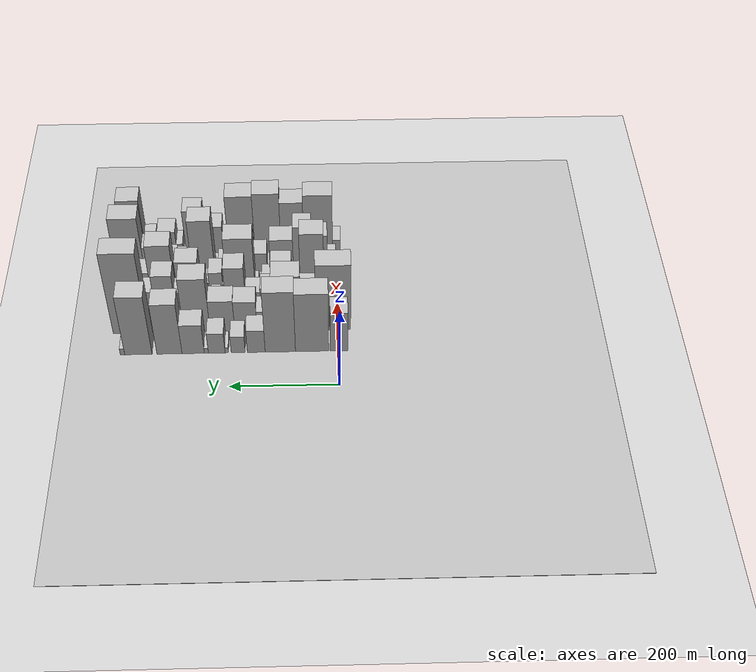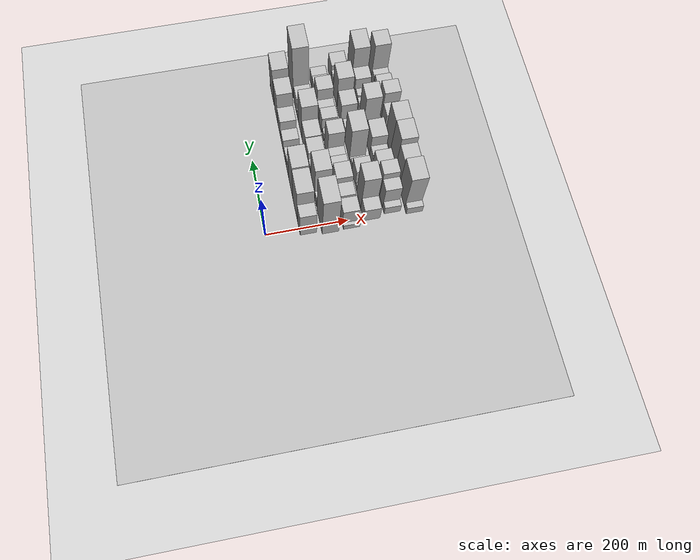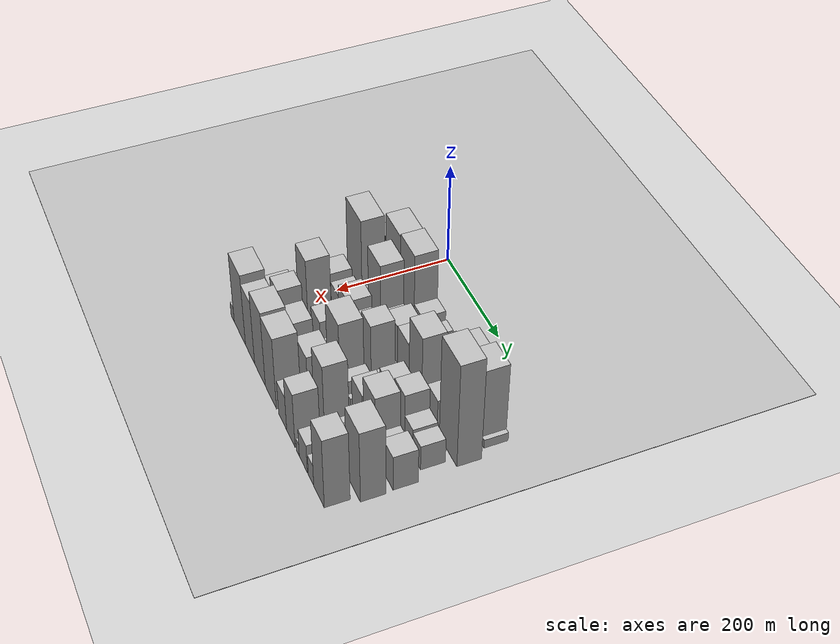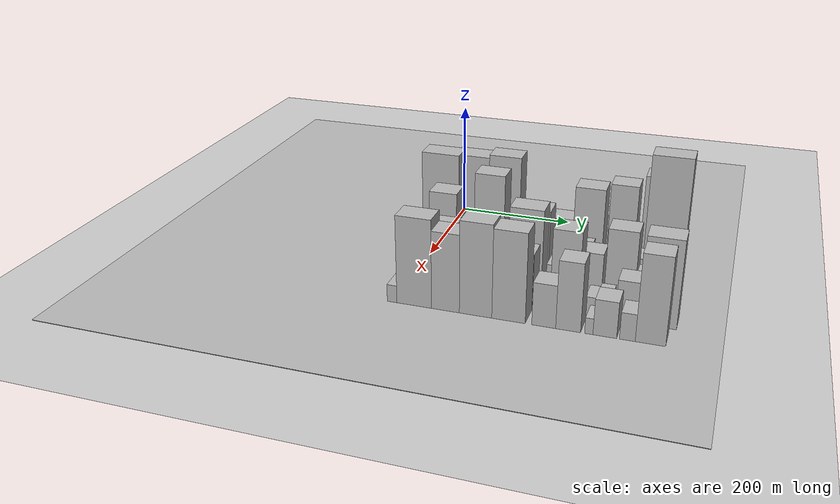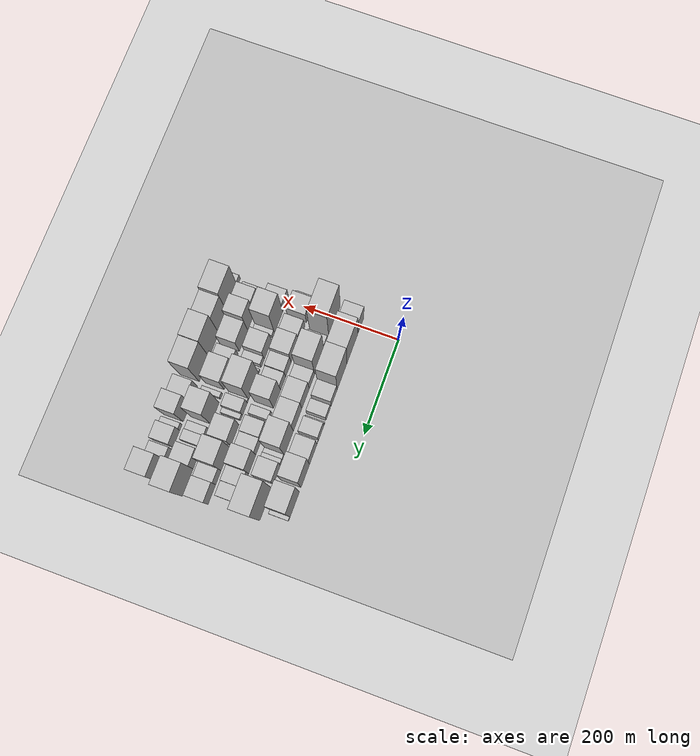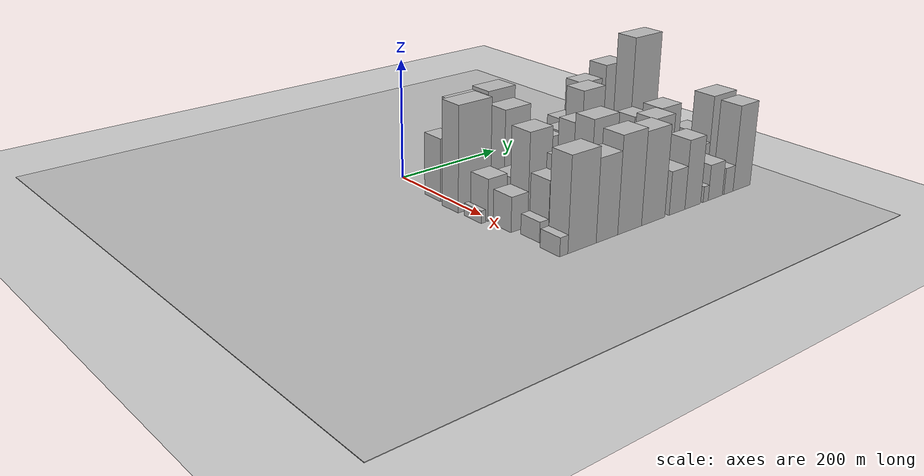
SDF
<sdf version="1.6">
 <world name="default">
  <include><name>ground_plane_1</name><uri>model://HANNAS_ground_plane</uri></include>
  <include>
   <name>ground_plane_2</name>
   <uri>model://HANNAS_ground_plane</uri>
   <pose>100 0 0  0 0 0</pose>
  </include>
  <model name="building_27">
   <static>1</static>
   <pose>100.0000 -0.3385 0 0.000000 0.000000 0.000000</pose>
   <link name="link">
    <pose>0 0 52.50 0 0 0</pose>
    <collision name="collision"><geometry><box><size>40.0000 32.3721 105.0000</size></box></geometry></collision>
    <visual name="visual">
     <cast_shadows>0</cast_shadows>
     <geometry><box><size>40.0000 32.3721 105.0000</size></box></geometry>
     <material>
      <script>
       <uri>model://HANNAS_wall/materials/scripts</uri>
       <uri>model://HANNAS_wall/materials/textures</uri>
       <name>vrc/HANNAS_wall</name>
      </script>
     </material>
    </visual>
   </link>
  </model>
  <model name="building_28">
   <static>1</static>
   <pose>100.0000 49.6720 0 0.000000 0.000000 0.000000</pose>
   <link name="link">
    <pose>0 0 78.00 0 0 0</pose>
    <collision name="collision"><geometry><box><size>40.0000 61.6490 156.0000</size></box></geometry></collision>
    <visual name="visual">
     <cast_shadows>0</cast_shadows>
     <geometry><box><size>40.0000 61.6490 156.0000</size></box></geometry>
     <material>
      <script>
       <uri>model://HANNAS_wall/materials/scripts</uri>
       <uri>model://HANNAS_wall/materials/textures</uri>
       <name>vrc/HANNAS_wall</name>
      </script>
     </material>
    </visual>
   </link>
  </model>
  <model name="building_29">
   <static>1</static>
   <pose>100.0000 108.5790 0 0.000000 0.000000 0.000000</pose>
   <link name="link">
    <pose>0 0 81.00 0 0 0</pose>
    <collision name="collision"><geometry><box><size>40.0000 56.1650 162.0000</size></box></geometry></collision>
    <visual name="visual">
     <cast_shadows>0</cast_shadows>
     <geometry><box><size>40.0000 56.1650 162.0000</size></box></geometry>
     <material>
      <script>
       <uri>model://HANNAS_wall/materials/scripts</uri>
       <uri>model://HANNAS_wall/materials/textures</uri>
       <name>vrc/HANNAS_wall</name>
      </script>
     </material>
    </visual>
   </link>
  </model>
  <model name="building_30">
   <static>1</static>
   <pose>100.0000 153.1803 0 0.000000 0.000000 0.000000</pose>
   <link name="link">
    <pose>0 0 30.00 0 0 0</pose>
    <collision name="collision"><geometry><box><size>40.0000 33.0377 60.0000</size></box></geometry></collision>
    <visual name="visual">
     <cast_shadows>0</cast_shadows>
     <geometry><box><size>40.0000 33.0377 60.0000</size></box></geometry>
     <material>
      <script>
       <uri>model://HANNAS_wall/materials/scripts</uri>
       <uri>model://HANNAS_wall/materials/textures</uri>
       <name>vrc/HANNAS_wall</name>
      </script>
     </material>
    </visual>
   </link>
  </model>
  <model name="building_31">
   <static>1</static>
   <pose>100.0000 186.6412 0 0.000000 0.000000 0.000000</pose>
   <link name="link">
    <pose>0 0 22.50 0 0 0</pose>
    <collision name="collision"><geometry><box><size>40.0000 25.8840 45.0000</size></box></geometry></collision>
    <visual name="visual">
     <cast_shadows>0</cast_shadows>
     <geometry><box><size>40.0000 25.8840 45.0000</size></box></geometry>
     <material>
      <script>
       <uri>model://HANNAS_wall/materials/scripts</uri>
       <uri>model://HANNAS_wall/materials/textures</uri>
       <name>vrc/HANNAS_wall</name>
      </script>
     </material>
    </visual>
   </link>
  </model>
  <model name="building_32">
   <static>1</static>
   <pose>100.0000 207.7206 0 0.000000 0.000000 0.000000</pose>
   <link name="link">
    <pose>0 0 7.50 0 0 0</pose>
    <collision name="collision"><geometry><box><size>40.0000 6.2748 15.0000</size></box></geometry></collision>
    <visual name="visual">
     <cast_shadows>0</cast_shadows>
     <geometry><box><size>40.0000 6.2748 15.0000</size></box></geometry>
     <material>
      <script>
       <uri>model://HANNAS_wall/materials/scripts</uri>
       <uri>model://HANNAS_wall/materials/textures</uri>
       <name>vrc/HANNAS_wall</name>
      </script>
     </material>
    </visual>
   </link>
  </model>
  <model name="building_33">
   <static>1</static>
   <pose>100.0000 226.3824 0 0.000000 0.000000 0.000000</pose>
   <link name="link">
    <pose>0 0 27.00 0 0 0</pose>
    <collision name="collision"><geometry><box><size>40.0000 31.0487 54.0000</size></box></geometry></collision>
    <visual name="visual">
     <cast_shadows>0</cast_shadows>
     <geometry><box><size>40.0000 31.0487 54.0000</size></box></geometry>
     <material>
      <script>
       <uri>model://HANNAS_wall/materials/scripts</uri>
       <uri>model://HANNAS_wall/materials/textures</uri>
       <name>vrc/HANNAS_wall</name>
      </script>
     </material>
    </visual>
   </link>
  </model>
  <model name="building_34">
   <static>1</static>
   <pose>100.0000 245.6248 0 0.000000 0.000000 0.000000</pose>
   <link name="link">
    <pose>0 0 7.50 0 0 0</pose>
    <collision name="collision"><geometry><box><size>40.0000 7.4362 15.0000</size></box></geometry></collision>
    <visual name="visual">
     <cast_shadows>0</cast_shadows>
     <geometry><box><size>40.0000 7.4362 15.0000</size></box></geometry>
     <material>
      <script>
       <uri>model://HANNAS_wall/materials/scripts</uri>
       <uri>model://HANNAS_wall/materials/textures</uri>
       <name>vrc/HANNAS_wall</name>
      </script>
     </material>
    </visual>
   </link>
  </model>
  <model name="building_35">
   <static>1</static>
   <pose>100.0000 269.9662 0 0.000000 0.000000 0.000000</pose>
   <link name="link">
    <pose>0 0 39.00 0 0 0</pose>
    <collision name="collision"><geometry><box><size>40.0000 41.2466 78.0000</size></box></geometry></collision>
    <visual name="visual">
     <cast_shadows>0</cast_shadows>
     <geometry><box><size>40.0000 41.2466 78.0000</size></box></geometry>
     <material>
      <script>
       <uri>model://HANNAS_wall/materials/scripts</uri>
       <uri>model://HANNAS_wall/materials/textures</uri>
       <name>vrc/HANNAS_wall</name>
      </script>
     </material>
    </visual>
   </link>
  </model>
  <model name="building_36">
   <static>1</static>
   <pose>100.0000 313.8307 0 0.000000 0.000000 0.000000</pose>
   <link name="link">
    <pose>0 0 67.50 0 0 0</pose>
    <collision name="collision"><geometry><box><size>40.0000 46.4823 135.0000</size></box></geometry></collision>
    <visual name="visual">
     <cast_shadows>0</cast_shadows>
     <geometry><box><size>40.0000 46.4823 135.0000</size></box></geometry>
     <material>
      <script>
       <uri>model://HANNAS_wall/materials/scripts</uri>
       <uri>model://HANNAS_wall/materials/textures</uri>
       <name>vrc/HANNAS_wall</name>
      </script>
     </material>
    </visual>
   </link>
  </model>
  <model name="building_37">
   <static>1</static>
   <pose>100.0000 371.2891 0 0.000000 0.000000 0.000000</pose>
   <link name="link">
    <pose>0 0 78.00 0 0 0</pose>
    <collision name="collision"><geometry><box><size>40.0000 50.4343 156.0000</size></box></geometry></collision>
    <visual name="visual">
     <cast_shadows>0</cast_shadows>
     <geometry><box><size>40.0000 50.4343 156.0000</size></box></geometry>
     <material>
      <script>
       <uri>model://HANNAS_wall/materials/scripts</uri>
       <uri>model://HANNAS_wall/materials/textures</uri>
       <name>vrc/HANNAS_wall</name>
      </script>
     </material>
    </visual>
   </link>
  </model>
  <model name="building_38">
   <static>1</static>
   <pose>100.0000 400.6374 0 0.000000 0.000000 0.000000</pose>
   <link name="link">
    <pose>0 0 9.00 0 0 0</pose>
    <collision name="collision"><geometry><box><size>40.0000 8.2623 18.0000</size></box></geometry></collision>
    <visual name="visual">
     <cast_shadows>0</cast_shadows>
     <geometry><box><size>40.0000 8.2623 18.0000</size></box></geometry>
     <material>
      <script>
       <uri>model://HANNAS_wall/materials/scripts</uri>
       <uri>model://HANNAS_wall/materials/textures</uri>
       <name>vrc/HANNAS_wall</name>
      </script>
     </material>
    </visual>
   </link>
  </model>
  <model name="building_76">
   <static>1</static>
   <pose>152.0000 9.4014 0 0.000000 0.000000 0.000000</pose>
   <link name="link">
    <pose>0 0 87.00 0 0 0</pose>
    <collision name="collision"><geometry><box><size>40.0000 65.3171 174.0000</size></box></geometry></collision>
    <visual name="visual">
     <cast_shadows>0</cast_shadows>
     <geometry><box><size>40.0000 65.3171 174.0000</size></box></geometry>
     <material>
      <script>
       <uri>model://HANNAS_wall/materials/scripts</uri>
       <uri>model://HANNAS_wall/materials/textures</uri>
       <name>vrc/HANNAS_wall</name>
      </script>
     </material>
    </visual>
   </link>
  </model>
  <model name="building_77">
   <static>1</static>
   <pose>152.0000 59.0993 0 0.000000 0.000000 0.000000</pose>
   <link name="link">
    <pose>0 0 21.00 0 0 0</pose>
    <collision name="collision"><geometry><box><size>40.0000 22.0787 42.0000</size></box></geometry></collision>
    <visual name="visual">
     <cast_shadows>0</cast_shadows>
     <geometry><box><size>40.0000 22.0787 42.0000</size></box></geometry>
     <material>
      <script>
       <uri>model://HANNAS_wall/materials/scripts</uri>
       <uri>model://HANNAS_wall/materials/textures</uri>
       <name>vrc/HANNAS_wall</name>
      </script>
     </material>
    </visual>
   </link>
  </model>
  <model name="building_78">
   <static>1</static>
   <pose>152.0000 96.3847 0 0.000000 0.000000 0.000000</pose>
   <link name="link">
    <pose>0 0 73.50 0 0 0</pose>
    <collision name="collision"><geometry><box><size>40.0000 52.4920 147.0000</size></box></geometry></collision>
    <visual name="visual">
     <cast_shadows>0</cast_shadows>
     <geometry><box><size>40.0000 52.4920 147.0000</size></box></geometry>
     <material>
      <script>
       <uri>model://HANNAS_wall/materials/scripts</uri>
       <uri>model://HANNAS_wall/materials/textures</uri>
       <name>vrc/HANNAS_wall</name>
      </script>
     </material>
    </visual>
   </link>
  </model>
  <model name="building_79">
   <static>1</static>
   <pose>152.0000 137.4373 0 0.000000 0.000000 0.000000</pose>
   <link name="link">
    <pose>0 0 27.00 0 0 0</pose>
    <collision name="collision"><geometry><box><size>40.0000 29.6134 54.0000</size></box></geometry></collision>
    <visual name="visual">
     <cast_shadows>0</cast_shadows>
     <geometry><box><size>40.0000 29.6134 54.0000</size></box></geometry>
     <material>
      <script>
       <uri>model://HANNAS_wall/materials/scripts</uri>
       <uri>model://HANNAS_wall/materials/textures</uri>
       <name>vrc/HANNAS_wall</name>
      </script>
     </material>
    </visual>
   </link>
  </model>
  <model name="building_80">
   <static>1</static>
   <pose>152.0000 173.2506 0 0.000000 0.000000 0.000000</pose>
   <link name="link">
    <pose>0 0 40.50 0 0 0</pose>
    <collision name="collision"><geometry><box><size>40.0000 42.0132 81.0000</size></box></geometry></collision>
    <visual name="visual">
     <cast_shadows>0</cast_shadows>
     <geometry><box><size>40.0000 42.0132 81.0000</size></box></geometry>
     <material>
      <script>
       <uri>model://HANNAS_wall/materials/scripts</uri>
       <uri>model://HANNAS_wall/materials/textures</uri>
       <name>vrc/HANNAS_wall</name>
      </script>
     </material>
    </visual>
   </link>
  </model>
  <model name="building_81">
   <static>1</static>
   <pose>152.0000 217.4096 0 0.000000 0.000000 0.000000</pose>
   <link name="link">
    <pose>0 0 42.00 0 0 0</pose>
    <collision name="collision"><geometry><box><size>40.0000 46.3047 84.0000</size></box></geometry></collision>
    <visual name="visual">
     <cast_shadows>0</cast_shadows>
     <geometry><box><size>40.0000 46.3047 84.0000</size></box></geometry>
     <material>
      <script>
       <uri>model://HANNAS_wall/materials/scripts</uri>
       <uri>model://HANNAS_wall/materials/textures</uri>
       <name>vrc/HANNAS_wall</name>
      </script>
     </material>
    </visual>
   </link>
  </model>
  <model name="building_82">
   <static>1</static>
   <pose>152.0000 265.3764 0 0.000000 0.000000 0.000000</pose>
   <link name="link">
    <pose>0 0 72.00 0 0 0</pose>
    <collision name="collision"><geometry><box><size>40.0000 49.6288 144.0000</size></box></geometry></collision>
    <visual name="visual">
     <cast_shadows>0</cast_shadows>
     <geometry><box><size>40.0000 49.6288 144.0000</size></box></geometry>
     <material>
      <script>
       <uri>model://HANNAS_wall/materials/scripts</uri>
       <uri>model://HANNAS_wall/materials/textures</uri>
       <name>vrc/HANNAS_wall</name>
      </script>
     </material>
    </visual>
   </link>
  </model>
  <model name="building_83">
   <static>1</static>
   <pose>152.0000 295.2473 0 0.000000 0.000000 0.000000</pose>
   <link name="link">
    <pose>0 0 10.50 0 0 0</pose>
    <collision name="collision"><geometry><box><size>40.0000 10.1131 21.0000</size></box></geometry></collision>
    <visual name="visual">
     <cast_shadows>0</cast_shadows>
     <geometry><box><size>40.0000 10.1131 21.0000</size></box></geometry>
     <material>
      <script>
       <uri>model://HANNAS_wall/materials/scripts</uri>
       <uri>model://HANNAS_wall/materials/textures</uri>
       <name>vrc/HANNAS_wall</name>
      </script>
     </material>
    </visual>
   </link>
  </model>
  <model name="building_84">
   <static>1</static>
   <pose>152.0000 305.7134 0 0.000000 0.000000 0.000000</pose>
   <link name="link">
    <pose>0 0 13.50 0 0 0</pose>
    <collision name="collision"><geometry><box><size>40.0000 10.8191 27.0000</size></box></geometry></collision>
    <visual name="visual">
     <cast_shadows>0</cast_shadows>
     <geometry><box><size>40.0000 10.8191 27.0000</size></box></geometry>
     <material>
      <script>
       <uri>model://HANNAS_wall/materials/scripts</uri>
       <uri>model://HANNAS_wall/materials/textures</uri>
       <name>vrc/HANNAS_wall</name>
      </script>
     </material>
    </visual>
   </link>
  </model>
  <model name="building_85">
   <static>1</static>
   <pose>152.0000 330.2927 0 0.000000 0.000000 0.000000</pose>
   <link name="link">
    <pose>0 0 34.50 0 0 0</pose>
    <collision name="collision"><geometry><box><size>40.0000 38.3396 69.0000</size></box></geometry></collision>
    <visual name="visual">
     <cast_shadows>0</cast_shadows>
     <geometry><box><size>40.0000 38.3396 69.0000</size></box></geometry>
     <material>
      <script>
       <uri>model://HANNAS_wall/materials/scripts</uri>
       <uri>model://HANNAS_wall/materials/textures</uri>
       <name>vrc/HANNAS_wall</name>
      </script>
     </material>
    </visual>
   </link>
  </model>
  <model name="building_86">
   <static>1</static>
   <pose>152.0000 389.9390 0 0.000000 0.000000 0.000000</pose>
   <link name="link">
    <pose>0 0 106.50 0 0 0</pose>
    <collision name="collision"><geometry><box><size>40.0000 64.9530 213.0000</size></box></geometry></collision>
    <visual name="visual">
     <cast_shadows>0</cast_shadows>
     <geometry><box><size>40.0000 64.9530 213.0000</size></box></geometry>
     <material>
      <script>
       <uri>model://HANNAS_wall/materials/scripts</uri>
       <uri>model://HANNAS_wall/materials/textures</uri>
       <name>vrc/HANNAS_wall</name>
      </script>
     </material>
    </visual>
   </link>
  </model>
  <model name="building_122">
   <static>1</static>
   <pose>204.0000 -16.7862 0 0.000000 0.000000 0.000000</pose>
   <link name="link">
    <pose>0 0 10.50 0 0 0</pose>
    <collision name="collision"><geometry><box><size>40.0000 8.7486 21.0000</size></box></geometry></collision>
    <visual name="visual">
     <cast_shadows>0</cast_shadows>
     <geometry><box><size>40.0000 8.7486 21.0000</size></box></geometry>
     <material>
      <script>
       <uri>model://HANNAS_wall/materials/scripts</uri>
       <uri>model://HANNAS_wall/materials/textures</uri>
       <name>vrc/HANNAS_wall</name>
      </script>
     </material>
    </visual>
   </link>
  </model>
  <model name="building_123">
   <static>1</static>
   <pose>204.0000 10.6278 0 0.000000 0.000000 0.000000</pose>
   <link name="link">
    <pose>0 0 34.50 0 0 0</pose>
    <collision name="collision"><geometry><box><size>40.0000 38.0793 69.0000</size></box></geometry></collision>
    <visual name="visual">
     <cast_shadows>0</cast_shadows>
     <geometry><box><size>40.0000 38.0793 69.0000</size></box></geometry>
     <material>
      <script>
       <uri>model://HANNAS_wall/materials/scripts</uri>
       <uri>model://HANNAS_wall/materials/textures</uri>
       <name>vrc/HANNAS_wall</name>
      </script>
     </material>
    </visual>
   </link>
  </model>
  <model name="building_124">
   <static>1</static>
   <pose>204.0000 55.2662 0 0.000000 0.000000 0.000000</pose>
   <link name="link">
    <pose>0 0 30.00 0 0 0</pose>
    <collision name="collision"><geometry><box><size>40.0000 35.1975 60.0000</size></box></geometry></collision>
    <visual name="visual">
     <cast_shadows>0</cast_shadows>
     <geometry><box><size>40.0000 35.1975 60.0000</size></box></geometry>
     <material>
      <script>
       <uri>model://HANNAS_wall/materials/scripts</uri>
       <uri>model://HANNAS_wall/materials/textures</uri>
       <name>vrc/HANNAS_wall</name>
      </script>
     </material>
    </visual>
   </link>
  </model>
  <model name="building_125">
   <static>1</static>
   <pose>204.0000 94.1316 0 0.000000 0.000000 0.000000</pose>
   <link name="link">
    <pose>0 0 42.00 0 0 0</pose>
    <collision name="collision"><geometry><box><size>40.0000 42.5333 84.0000</size></box></geometry></collision>
    <visual name="visual">
     <cast_shadows>0</cast_shadows>
     <geometry><box><size>40.0000 42.5333 84.0000</size></box></geometry>
     <material>
      <script>
       <uri>model://HANNAS_wall/materials/scripts</uri>
       <uri>model://HANNAS_wall/materials/textures</uri>
       <name>vrc/HANNAS_wall</name>
      </script>
     </material>
    </visual>
   </link>
  </model>
  <model name="building_126">
   <static>1</static>
   <pose>204.0000 130.6679 0 0.000000 0.000000 0.000000</pose>
   <link name="link">
    <pose>0 0 30.00 0 0 0</pose>
    <collision name="collision"><geometry><box><size>40.0000 30.5393 60.0000</size></box></geometry></collision>
    <visual name="visual">
     <cast_shadows>0</cast_shadows>
     <geometry><box><size>40.0000 30.5393 60.0000</size></box></geometry>
     <material>
      <script>
       <uri>model://HANNAS_wall/materials/scripts</uri>
       <uri>model://HANNAS_wall/materials/textures</uri>
       <name>vrc/HANNAS_wall</name>
      </script>
     </material>
    </visual>
   </link>
  </model>
  <model name="building_127">
   <static>1</static>
   <pose>204.0000 159.8805 0 0.000000 0.000000 0.000000</pose>
   <link name="link">
    <pose>0 0 25.50 0 0 0</pose>
    <collision name="collision"><geometry><box><size>40.0000 27.8859 51.0000</size></box></geometry></collision>
    <visual name="visual">
     <cast_shadows>0</cast_shadows>
     <geometry><box><size>40.0000 27.8859 51.0000</size></box></geometry>
     <material>
      <script>
       <uri>model://HANNAS_wall/materials/scripts</uri>
       <uri>model://HANNAS_wall/materials/textures</uri>
       <name>vrc/HANNAS_wall</name>
      </script>
     </material>
    </visual>
   </link>
  </model>
  <model name="building_128">
   <static>1</static>
   <pose>204.0000 192.9003 0 0.000000 0.000000 0.000000</pose>
   <link name="link">
    <pose>0 0 58.50 0 0 0</pose>
    <collision name="collision"><geometry><box><size>40.0000 38.1537 117.0000</size></box></geometry></collision>
    <visual name="visual">
     <cast_shadows>0</cast_shadows>
     <geometry><box><size>40.0000 38.1537 117.0000</size></box></geometry>
     <material>
      <script>
       <uri>model://HANNAS_wall/materials/scripts</uri>
       <uri>model://HANNAS_wall/materials/textures</uri>
       <name>vrc/HANNAS_wall</name>
      </script>
     </material>
    </visual>
   </link>
  </model>
  <model name="building_129">
   <static>1</static>
   <pose>204.0000 231.1745 0 0.000000 0.000000 0.000000</pose>
   <link name="link">
    <pose>0 0 16.50 0 0 0</pose>
    <collision name="collision"><geometry><box><size>40.0000 18.3946 33.0000</size></box></geometry></collision>
    <visual name="visual">
     <cast_shadows>0</cast_shadows>
     <geometry><box><size>40.0000 18.3946 33.0000</size></box></geometry>
     <material>
      <script>
       <uri>model://HANNAS_wall/materials/scripts</uri>
       <uri>model://HANNAS_wall/materials/textures</uri>
       <name>vrc/HANNAS_wall</name>
      </script>
     </material>
    </visual>
   </link>
  </model>
  <model name="building_130">
   <static>1</static>
   <pose>204.0000 263.5412 0 0.000000 0.000000 0.000000</pose>
   <link name="link">
    <pose>0 0 31.50 0 0 0</pose>
    <collision name="collision"><geometry><box><size>40.0000 32.3388 63.0000</size></box></geometry></collision>
    <visual name="visual">
     <cast_shadows>0</cast_shadows>
     <geometry><box><size>40.0000 32.3388 63.0000</size></box></geometry>
     <material>
      <script>
       <uri>model://HANNAS_wall/materials/scripts</uri>
       <uri>model://HANNAS_wall/materials/textures</uri>
       <name>vrc/HANNAS_wall</name>
      </script>
     </material>
    </visual>
   </link>
  </model>
  <model name="building_131">
   <static>1</static>
   <pose>204.0000 293.8722 0 0.000000 0.000000 0.000000</pose>
   <link name="link">
    <pose>0 0 27.00 0 0 0</pose>
    <collision name="collision"><geometry><box><size>40.0000 28.3230 54.0000</size></box></geometry></collision>
    <visual name="visual">
     <cast_shadows>0</cast_shadows>
     <geometry><box><size>40.0000 28.3230 54.0000</size></box></geometry>
     <material>
      <script>
       <uri>model://HANNAS_wall/materials/scripts</uri>
       <uri>model://HANNAS_wall/materials/textures</uri>
       <name>vrc/HANNAS_wall</name>
      </script>
     </material>
    </visual>
   </link>
  </model>
  <model name="building_132">
   <static>1</static>
   <pose>204.0000 327.5562 0 0.000000 0.000000 0.000000</pose>
   <link name="link">
    <pose>0 0 49.50 0 0 0</pose>
    <collision name="collision"><geometry><box><size>40.0000 39.0451 99.0000</size></box></geometry></collision>
    <visual name="visual">
     <cast_shadows>0</cast_shadows>
     <geometry><box><size>40.0000 39.0451 99.0000</size></box></geometry>
     <material>
      <script>
       <uri>model://HANNAS_wall/materials/scripts</uri>
       <uri>model://HANNAS_wall/materials/textures</uri>
       <name>vrc/HANNAS_wall</name>
      </script>
     </material>
    </visual>
   </link>
  </model>
  <model name="building_133">
   <static>1</static>
   <pose>204.0000 362.6404 0 0.000000 0.000000 0.000000</pose>
   <link name="link">
    <pose>0 0 28.50 0 0 0</pose>
    <collision name="collision"><geometry><box><size>40.0000 31.1232 57.0000</size></box></geometry></collision>
    <visual name="visual">
     <cast_shadows>0</cast_shadows>
     <geometry><box><size>40.0000 31.1232 57.0000</size></box></geometry>
     <material>
      <script>
       <uri>model://HANNAS_wall/materials/scripts</uri>
       <uri>model://HANNAS_wall/materials/textures</uri>
       <name>vrc/HANNAS_wall</name>
      </script>
     </material>
    </visual>
   </link>
  </model>
  <model name="building_134">
   <static>1</static>
   <pose>204.0000 392.9193 0 0.000000 0.000000 0.000000</pose>
   <link name="link">
    <pose>0 0 25.50 0 0 0</pose>
    <collision name="collision"><geometry><box><size>40.0000 29.4346 51.0000</size></box></geometry></collision>
    <visual name="visual">
     <cast_shadows>0</cast_shadows>
     <geometry><box><size>40.0000 29.4346 51.0000</size></box></geometry>
     <material>
      <script>
       <uri>model://HANNAS_wall/materials/scripts</uri>
       <uri>model://HANNAS_wall/materials/textures</uri>
       <name>vrc/HANNAS_wall</name>
      </script>
     </material>
    </visual>
   </link>
  </model>
  <model name="building_170">
   <static>1</static>
   <pose>256.0000 8.5585 0 0.000000 0.000000 0.000000</pose>
   <link name="link">
    <pose>0 0 28.50 0 0 0</pose>
    <collision name="collision"><geometry><box><size>40.0000 33.3806 57.0000</size></box></geometry></collision>
    <visual name="visual">
     <cast_shadows>0</cast_shadows>
     <geometry><box><size>40.0000 33.3806 57.0000</size></box></geometry>
     <material>
      <script>
       <uri>model://HANNAS_wall/materials/scripts</uri>
       <uri>model://HANNAS_wall/materials/textures</uri>
       <name>vrc/HANNAS_wall</name>
      </script>
     </material>
    </visual>
   </link>
  </model>
  <model name="building_171">
   <static>1</static>
   <pose>256.0000 48.0222 0 0.000000 0.000000 0.000000</pose>
   <link name="link">
    <pose>0 0 75.00 0 0 0</pose>
    <collision name="collision"><geometry><box><size>40.0000 45.5469 150.0000</size></box></geometry></collision>
    <visual name="visual">
     <cast_shadows>0</cast_shadows>
     <geometry><box><size>40.0000 45.5469 150.0000</size></box></geometry>
     <material>
      <script>
       <uri>model://HANNAS_wall/materials/scripts</uri>
       <uri>model://HANNAS_wall/materials/textures</uri>
       <name>vrc/HANNAS_wall</name>
      </script>
     </material>
    </visual>
   </link>
  </model>
  <model name="building_172">
   <static>1</static>
   <pose>256.0000 76.5300 0 0.000000 0.000000 0.000000</pose>
   <link name="link">
    <pose>0 0 13.50 0 0 0</pose>
    <collision name="collision"><geometry><box><size>40.0000 11.4686 27.0000</size></box></geometry></collision>
    <visual name="visual">
     <cast_shadows>0</cast_shadows>
     <geometry><box><size>40.0000 11.4686 27.0000</size></box></geometry>
     <material>
      <script>
       <uri>model://HANNAS_wall/materials/scripts</uri>
       <uri>model://HANNAS_wall/materials/textures</uri>
       <name>vrc/HANNAS_wall</name>
      </script>
     </material>
    </visual>
   </link>
  </model>
  <model name="building_173">
   <static>1</static>
   <pose>256.0000 107.2430 0 0.000000 0.000000 0.000000</pose>
   <link name="link">
    <pose>0 0 34.50 0 0 0</pose>
    <collision name="collision"><geometry><box><size>40.0000 39.9574 69.0000</size></box></geometry></collision>
    <visual name="visual">
     <cast_shadows>0</cast_shadows>
     <geometry><box><size>40.0000 39.9574 69.0000</size></box></geometry>
     <material>
      <script>
       <uri>model://HANNAS_wall/materials/scripts</uri>
       <uri>model://HANNAS_wall/materials/textures</uri>
       <name>vrc/HANNAS_wall</name>
      </script>
     </material>
    </visual>
   </link>
  </model>
  <model name="building_174">
   <static>1</static>
   <pose>256.0000 136.0284 0 0.000000 0.000000 0.000000</pose>
   <link name="link">
    <pose>0 0 16.50 0 0 0</pose>
    <collision name="collision"><geometry><box><size>40.0000 17.6133 33.0000</size></box></geometry></collision>
    <visual name="visual">
     <cast_shadows>0</cast_shadows>
     <geometry><box><size>40.0000 17.6133 33.0000</size></box></geometry>
     <material>
      <script>
       <uri>model://HANNAS_wall/materials/scripts</uri>
       <uri>model://HANNAS_wall/materials/textures</uri>
       <name>vrc/HANNAS_wall</name>
      </script>
     </material>
    </visual>
   </link>
  </model>
  <model name="building_175">
   <static>1</static>
   <pose>256.0000 154.2861 0 0.000000 0.000000 0.000000</pose>
   <link name="link">
    <pose>0 0 7.50 0 0 0</pose>
    <collision name="collision"><geometry><box><size>40.0000 6.9021 15.0000</size></box></geometry></collision>
    <visual name="visual">
     <cast_shadows>0</cast_shadows>
     <geometry><box><size>40.0000 6.9021 15.0000</size></box></geometry>
     <material>
      <script>
       <uri>model://HANNAS_wall/materials/scripts</uri>
       <uri>model://HANNAS_wall/materials/textures</uri>
       <name>vrc/HANNAS_wall</name>
      </script>
     </material>
    </visual>
   </link>
  </model>
  <model name="building_176">
   <static>1</static>
   <pose>256.0000 185.1855 0 0.000000 0.000000 0.000000</pose>
   <link name="link">
    <pose>0 0 70.50 0 0 0</pose>
    <collision name="collision"><geometry><box><size>40.0000 54.8968 141.0000</size></box></geometry></collision>
    <visual name="visual">
     <cast_shadows>0</cast_shadows>
     <geometry><box><size>40.0000 54.8968 141.0000</size></box></geometry>
     <material>
      <script>
       <uri>model://HANNAS_wall/materials/scripts</uri>
       <uri>model://HANNAS_wall/materials/textures</uri>
       <name>vrc/HANNAS_wall</name>
      </script>
     </material>
    </visual>
   </link>
  </model>
  <model name="building_177">
   <static>1</static>
   <pose>256.0000 216.2706 0 0.000000 0.000000 0.000000</pose>
   <link name="link">
    <pose>0 0 9.00 0 0 0</pose>
    <collision name="collision"><geometry><box><size>40.0000 7.2733 18.0000</size></box></geometry></collision>
    <visual name="visual">
     <cast_shadows>0</cast_shadows>
     <geometry><box><size>40.0000 7.2733 18.0000</size></box></geometry>
     <material>
      <script>
       <uri>model://HANNAS_wall/materials/scripts</uri>
       <uri>model://HANNAS_wall/materials/textures</uri>
       <name>vrc/HANNAS_wall</name>
      </script>
     </material>
    </visual>
   </link>
  </model>
  <model name="building_178">
   <static>1</static>
   <pose>256.0000 232.9985 0 0.000000 0.000000 0.000000</pose>
   <link name="link">
    <pose>0 0 25.50 0 0 0</pose>
    <collision name="collision"><geometry><box><size>40.0000 26.1825 51.0000</size></box></geometry></collision>
    <visual name="visual">
     <cast_shadows>0</cast_shadows>
     <geometry><box><size>40.0000 26.1825 51.0000</size></box></geometry>
     <material>
      <script>
       <uri>model://HANNAS_wall/materials/scripts</uri>
       <uri>model://HANNAS_wall/materials/textures</uri>
       <name>vrc/HANNAS_wall</name>
      </script>
     </material>
    </visual>
   </link>
  </model>
  <model name="building_179">
   <static>1</static>
   <pose>256.0000 251.4834 0 0.000000 0.000000 0.000000</pose>
   <link name="link">
    <pose>0 0 12.00 0 0 0</pose>
    <collision name="collision"><geometry><box><size>40.0000 10.7873 24.0000</size></box></geometry></collision>
    <visual name="visual">
     <cast_shadows>0</cast_shadows>
     <geometry><box><size>40.0000 10.7873 24.0000</size></box></geometry>
     <material>
      <script>
       <uri>model://HANNAS_wall/materials/scripts</uri>
       <uri>model://HANNAS_wall/materials/textures</uri>
       <name>vrc/HANNAS_wall</name>
      </script>
     </material>
    </visual>
   </link>
  </model>
  <model name="building_180">
   <static>1</static>
   <pose>256.0000 286.6465 0 0.000000 0.000000 0.000000</pose>
   <link name="link">
    <pose>0 0 40.50 0 0 0</pose>
    <collision name="collision"><geometry><box><size>40.0000 43.5388 81.0000</size></box></geometry></collision>
    <visual name="visual">
     <cast_shadows>0</cast_shadows>
     <geometry><box><size>40.0000 43.5388 81.0000</size></box></geometry>
     <material>
      <script>
       <uri>model://HANNAS_wall/materials/scripts</uri>
       <uri>model://HANNAS_wall/materials/textures</uri>
       <name>vrc/HANNAS_wall</name>
      </script>
     </material>
    </visual>
   </link>
  </model>
  <model name="building_181">
   <static>1</static>
   <pose>256.0000 336.0050 0 0.000000 0.000000 0.000000</pose>
   <link name="link">
    <pose>0 0 63.00 0 0 0</pose>
    <collision name="collision"><geometry><box><size>40.0000 47.1782 126.0000</size></box></geometry></collision>
    <visual name="visual">
     <cast_shadows>0</cast_shadows>
     <geometry><box><size>40.0000 47.1782 126.0000</size></box></geometry>
     <material>
      <script>
       <uri>model://HANNAS_wall/materials/scripts</uri>
       <uri>model://HANNAS_wall/materials/textures</uri>
       <name>vrc/HANNAS_wall</name>
      </script>
     </material>
    </visual>
   </link>
  </model>
  <model name="building_182">
   <static>1</static>
   <pose>256.0000 373.8545 0 0.000000 0.000000 0.000000</pose>
   <link name="link">
    <pose>0 0 27.00 0 0 0</pose>
    <collision name="collision"><geometry><box><size>40.0000 28.5209 54.0000</size></box></geometry></collision>
    <visual name="visual">
     <cast_shadows>0</cast_shadows>
     <geometry><box><size>40.0000 28.5209 54.0000</size></box></geometry>
     <material>
      <script>
       <uri>model://HANNAS_wall/materials/scripts</uri>
       <uri>model://HANNAS_wall/materials/textures</uri>
       <name>vrc/HANNAS_wall</name>
      </script>
     </material>
    </visual>
   </link>
  </model>
  <model name="building_183">
   <static>1</static>
   <pose>256.0000 407.9335 0 0.000000 0.000000 0.000000</pose>
   <link name="link">
    <pose>0 0 36.00 0 0 0</pose>
    <collision name="collision"><geometry><box><size>40.0000 39.6370 72.0000</size></box></geometry></collision>
    <visual name="visual">
     <cast_shadows>0</cast_shadows>
     <geometry><box><size>40.0000 39.6370 72.0000</size></box></geometry>
     <material>
      <script>
       <uri>model://HANNAS_wall/materials/scripts</uri>
       <uri>model://HANNAS_wall/materials/textures</uri>
       <name>vrc/HANNAS_wall</name>
      </script>
     </material>
    </visual>
   </link>
  </model>
  <model name="building_219">
   <static>1</static>
   <pose>308.0000 8.8605 0 0.000000 0.000000 0.000000</pose>
   <link name="link">
    <pose>0 0 16.50 0 0 0</pose>
    <collision name="collision"><geometry><box><size>40.0000 17.1379 33.0000</size></box></geometry></collision>
    <visual name="visual">
     <cast_shadows>0</cast_shadows>
     <geometry><box><size>40.0000 17.1379 33.0000</size></box></geometry>
     <material>
      <script>
       <uri>model://HANNAS_wall/materials/scripts</uri>
       <uri>model://HANNAS_wall/materials/textures</uri>
       <name>vrc/HANNAS_wall</name>
      </script>
     </material>
    </visual>
   </link>
  </model>
  <model name="building_220">
   <static>1</static>
   <pose>308.0000 32.8463 0 0.000000 0.000000 0.000000</pose>
   <link name="link">
    <pose>0 0 46.50 0 0 0</pose>
    <collision name="collision"><geometry><box><size>40.0000 30.8337 93.0000</size></box></geometry></collision>
    <visual name="visual">
     <cast_shadows>0</cast_shadows>
     <geometry><box><size>40.0000 30.8337 93.0000</size></box></geometry>
     <material>
      <script>
       <uri>model://HANNAS_wall/materials/scripts</uri>
       <uri>model://HANNAS_wall/materials/textures</uri>
       <name>vrc/HANNAS_wall</name>
      </script>
     </material>
    </visual>
   </link>
  </model>
  <model name="building_221">
   <static>1</static>
   <pose>308.0000 66.1040 0 0.000000 0.000000 0.000000</pose>
   <link name="link">
    <pose>0 0 58.50 0 0 0</pose>
    <collision name="collision"><geometry><box><size>40.0000 35.6817 117.0000</size></box></geometry></collision>
    <visual name="visual">
     <cast_shadows>0</cast_shadows>
     <geometry><box><size>40.0000 35.6817 117.0000</size></box></geometry>
     <material>
      <script>
       <uri>model://HANNAS_wall/materials/scripts</uri>
       <uri>model://HANNAS_wall/materials/textures</uri>
       <name>vrc/HANNAS_wall</name>
      </script>
     </material>
    </visual>
   </link>
  </model>
  <model name="building_222">
   <static>1</static>
   <pose>308.0000 106.6300 0 0.000000 0.000000 0.000000</pose>
   <link name="link">
    <pose>0 0 42.00 0 0 0</pose>
    <collision name="collision"><geometry><box><size>40.0000 45.3704 84.0000</size></box></geometry></collision>
    <visual name="visual">
     <cast_shadows>0</cast_shadows>
     <geometry><box><size>40.0000 45.3704 84.0000</size></box></geometry>
     <material>
      <script>
       <uri>model://HANNAS_wall/materials/scripts</uri>
       <uri>model://HANNAS_wall/materials/textures</uri>
       <name>vrc/HANNAS_wall</name>
      </script>
     </material>
    </visual>
   </link>
  </model>
  <model name="building_223">
   <static>1</static>
   <pose>308.0000 148.2349 0 0.000000 0.000000 0.000000</pose>
   <link name="link">
    <pose>0 0 24.00 0 0 0</pose>
    <collision name="collision"><geometry><box><size>40.0000 25.8393 48.0000</size></box></geometry></collision>
    <visual name="visual">
     <cast_shadows>0</cast_shadows>
     <geometry><box><size>40.0000 25.8393 48.0000</size></box></geometry>
     <material>
      <script>
       <uri>model://HANNAS_wall/materials/scripts</uri>
       <uri>model://HANNAS_wall/materials/textures</uri>
       <name>vrc/HANNAS_wall</name>
      </script>
     </material>
    </visual>
   </link>
  </model>
  <model name="building_224">
   <static>1</static>
   <pose>308.0000 185.9809 0 0.000000 0.000000 0.000000</pose>
   <link name="link">
    <pose>0 0 45.00 0 0 0</pose>
    <collision name="collision"><geometry><box><size>40.0000 49.6528 90.0000</size></box></geometry></collision>
    <visual name="visual">
     <cast_shadows>0</cast_shadows>
     <geometry><box><size>40.0000 49.6528 90.0000</size></box></geometry>
     <material>
      <script>
       <uri>model://HANNAS_wall/materials/scripts</uri>
       <uri>model://HANNAS_wall/materials/textures</uri>
       <name>vrc/HANNAS_wall</name>
      </script>
     </material>
    </visual>
   </link>
  </model>
  <model name="building_225">
   <static>1</static>
   <pose>308.0000 225.3971 0 0.000000 0.000000 0.000000</pose>
   <link name="link">
    <pose>0 0 12.00 0 0 0</pose>
    <collision name="collision"><geometry><box><size>40.0000 11.1796 24.0000</size></box></geometry></collision>
    <visual name="visual">
     <cast_shadows>0</cast_shadows>
     <geometry><box><size>40.0000 11.1796 24.0000</size></box></geometry>
     <material>
      <script>
       <uri>model://HANNAS_wall/materials/scripts</uri>
       <uri>model://HANNAS_wall/materials/textures</uri>
       <name>vrc/HANNAS_wall</name>
      </script>
     </material>
    </visual>
   </link>
  </model>
  <model name="building_226">
   <static>1</static>
   <pose>308.0000 260.2657 0 0.000000 0.000000 0.000000</pose>
   <link name="link">
    <pose>0 0 69.00 0 0 0</pose>
    <collision name="collision"><geometry><box><size>40.0000 44.5576 138.0000</size></box></geometry></collision>
    <visual name="visual">
     <cast_shadows>0</cast_shadows>
     <geometry><box><size>40.0000 44.5576 138.0000</size></box></geometry>
     <material>
      <script>
       <uri>model://HANNAS_wall/materials/scripts</uri>
       <uri>model://HANNAS_wall/materials/textures</uri>
       <name>vrc/HANNAS_wall</name>
      </script>
     </material>
    </visual>
   </link>
  </model>
  <model name="building_227">
   <static>1</static>
   <pose>308.0000 301.5069 0 0.000000 0.000000 0.000000</pose>
   <link name="link">
    <pose>0 0 16.50 0 0 0</pose>
    <collision name="collision"><geometry><box><size>40.0000 17.9248 33.0000</size></box></geometry></collision>
    <visual name="visual">
     <cast_shadows>0</cast_shadows>
     <geometry><box><size>40.0000 17.9248 33.0000</size></box></geometry>
     <material>
      <script>
       <uri>model://HANNAS_wall/materials/scripts</uri>
       <uri>model://HANNAS_wall/materials/textures</uri>
       <name>vrc/HANNAS_wall</name>
      </script>
     </material>
    </visual>
   </link>
  </model>
  <model name="building_228">
   <static>1</static>
   <pose>308.0000 321.3654 0 0.000000 0.000000 0.000000</pose>
   <link name="link">
    <pose>0 0 19.50 0 0 0</pose>
    <collision name="collision"><geometry><box><size>40.0000 21.7923 39.0000</size></box></geometry></collision>
    <visual name="visual">
     <cast_shadows>0</cast_shadows>
     <geometry><box><size>40.0000 21.7923 39.0000</size></box></geometry>
     <material>
      <script>
       <uri>model://HANNAS_wall/materials/scripts</uri>
       <uri>model://HANNAS_wall/materials/textures</uri>
       <name>vrc/HANNAS_wall</name>
      </script>
     </material>
    </visual>
   </link>
  </model>
  <model name="building_229">
   <static>1</static>
   <pose>308.0000 357.1467 0 0.000000 0.000000 0.000000</pose>
   <link name="link">
    <pose>0 0 34.50 0 0 0</pose>
    <collision name="collision"><geometry><box><size>40.0000 35.7701 69.0000</size></box></geometry></collision>
    <visual name="visual">
     <cast_shadows>0</cast_shadows>
     <geometry><box><size>40.0000 35.7701 69.0000</size></box></geometry>
     <material>
      <script>
       <uri>model://HANNAS_wall/materials/scripts</uri>
       <uri>model://HANNAS_wall/materials/textures</uri>
       <name>vrc/HANNAS_wall</name>
      </script>
     </material>
    </visual>
   </link>
  </model>
  <model name="building_230">
   <static>1</static>
   <pose>308.0000 402.6915 0 0.000000 0.000000 0.000000</pose>
   <link name="link">
    <pose>0 0 73.50 0 0 0</pose>
    <collision name="collision"><geometry><box><size>40.0000 55.3195 147.0000</size></box></geometry></collision>
    <visual name="visual">
     <cast_shadows>0</cast_shadows>
     <geometry><box><size>40.0000 55.3195 147.0000</size></box></geometry>
     <material>
      <script>
       <uri>model://HANNAS_wall/materials/scripts</uri>
       <uri>model://HANNAS_wall/materials/textures</uri>
       <name>vrc/HANNAS_wall</name>
      </script>
     </material>
    </visual>
   </link>
  </model>
  <model name="building_272">
   <static>1</static>
   <pose>360.0000 -1.5470 0 0.000000 0.000000 0.000000</pose>
   <link name="link">
    <pose>0 0 15.00 0 0 0</pose>
    <collision name="collision"><geometry><box><size>40.0000 16.0815 30.0000</size></box></geometry></collision>
    <visual name="visual">
     <cast_shadows>0</cast_shadows>
     <geometry><box><size>40.0000 16.0815 30.0000</size></box></geometry>
     <material>
      <script>
       <uri>model://HANNAS_wall/materials/scripts</uri>
       <uri>model://HANNAS_wall/materials/textures</uri>
       <name>vrc/HANNAS_wall</name>
      </script>
     </material>
    </visual>
   </link>
  </model>
  <model name="building_273">
   <static>1</static>
   <pose>360.0000 35.0451 0 0.000000 0.000000 0.000000</pose>
   <link name="link">
    <pose>0 0 75.00 0 0 0</pose>
    <collision name="collision"><geometry><box><size>40.0000 57.1026 150.0000</size></box></geometry></collision>
    <visual name="visual">
     <cast_shadows>0</cast_shadows>
     <geometry><box><size>40.0000 57.1026 150.0000</size></box></geometry>
     <material>
      <script>
       <uri>model://HANNAS_wall/materials/scripts</uri>
       <uri>model://HANNAS_wall/materials/textures</uri>
       <name>vrc/HANNAS_wall</name>
      </script>
     </material>
    </visual>
   </link>
  </model>
  <model name="building_274">
   <static>1</static>
   <pose>360.0000 86.1078 0 0.000000 0.000000 0.000000</pose>
   <link name="link">
    <pose>0 0 66.00 0 0 0</pose>
    <collision name="collision"><geometry><box><size>40.0000 45.0228 132.0000</size></box></geometry></collision>
    <visual name="visual">
     <cast_shadows>0</cast_shadows>
     <geometry><box><size>40.0000 45.0228 132.0000</size></box></geometry>
     <material>
      <script>
       <uri>model://HANNAS_wall/materials/scripts</uri>
       <uri>model://HANNAS_wall/materials/textures</uri>
       <name>vrc/HANNAS_wall</name>
      </script>
     </material>
    </visual>
   </link>
  </model>
  <model name="building_275">
   <static>1</static>
   <pose>360.0000 134.4353 0 0.000000 0.000000 0.000000</pose>
   <link name="link">
    <pose>0 0 78.00 0 0 0</pose>
    <collision name="collision"><geometry><box><size>40.0000 51.6321 156.0000</size></box></geometry></collision>
    <visual name="visual">
     <cast_shadows>0</cast_shadows>
     <geometry><box><size>40.0000 51.6321 156.0000</size></box></geometry>
     <material>
      <script>
       <uri>model://HANNAS_wall/materials/scripts</uri>
       <uri>model://HANNAS_wall/materials/textures</uri>
       <name>vrc/HANNAS_wall</name>
      </script>
     </material>
    </visual>
   </link>
  </model>
  <model name="building_276">
   <static>1</static>
   <pose>360.0000 186.3306 0 0.000000 0.000000 0.000000</pose>
   <link name="link">
    <pose>0 0 75.00 0 0 0</pose>
    <collision name="collision"><geometry><box><size>40.0000 52.1586 150.0000</size></box></geometry></collision>
    <visual name="visual">
     <cast_shadows>0</cast_shadows>
     <geometry><box><size>40.0000 52.1586 150.0000</size></box></geometry>
     <material>
      <script>
       <uri>model://HANNAS_wall/materials/scripts</uri>
       <uri>model://HANNAS_wall/materials/textures</uri>
       <name>vrc/HANNAS_wall</name>
      </script>
     </material>
    </visual>
   </link>
  </model>
  <model name="building_277">
   <static>1</static>
   <pose>360.0000 240.6598 0 0.000000 0.000000 0.000000</pose>
   <link name="link">
    <pose>0 0 36.00 0 0 0</pose>
    <collision name="collision"><geometry><box><size>40.0000 36.4998 72.0000</size></box></geometry></collision>
    <visual name="visual">
     <cast_shadows>0</cast_shadows>
     <geometry><box><size>40.0000 36.4998 72.0000</size></box></geometry>
     <material>
      <script>
       <uri>model://HANNAS_wall/materials/scripts</uri>
       <uri>model://HANNAS_wall/materials/textures</uri>
       <name>vrc/HANNAS_wall</name>
      </script>
     </material>
    </visual>
   </link>
  </model>
  <model name="building_278">
   <static>1</static>
   <pose>360.0000 277.6773 0 0.000000 0.000000 0.000000</pose>
   <link name="link">
    <pose>0 0 57.00 0 0 0</pose>
    <collision name="collision"><geometry><box><size>40.0000 37.5351 114.0000</size></box></geometry></collision>
    <visual name="visual">
     <cast_shadows>0</cast_shadows>
     <geometry><box><size>40.0000 37.5351 114.0000</size></box></geometry>
     <material>
      <script>
       <uri>model://HANNAS_wall/materials/scripts</uri>
       <uri>model://HANNAS_wall/materials/textures</uri>
       <name>vrc/HANNAS_wall</name>
      </script>
     </material>
    </visual>
   </link>
  </model>
  <model name="building_279">
   <static>1</static>
   <pose>360.0000 308.6068 0 0.000000 0.000000 0.000000</pose>
   <link name="link">
    <pose>0 0 13.50 0 0 0</pose>
    <collision name="collision"><geometry><box><size>40.0000 12.3239 27.0000</size></box></geometry></collision>
    <visual name="visual">
     <cast_shadows>0</cast_shadows>
     <geometry><box><size>40.0000 12.3239 27.0000</size></box></geometry>
     <material>
      <script>
       <uri>model://HANNAS_wall/materials/scripts</uri>
       <uri>model://HANNAS_wall/materials/textures</uri>
       <name>vrc/HANNAS_wall</name>
      </script>
     </material>
    </visual>
   </link>
  </model>
  <model name="building_280">
   <static>1</static>
   <pose>360.0000 332.2466 0 0.000000 0.000000 0.000000</pose>
   <link name="link">
    <pose>0 0 30.00 0 0 0</pose>
    <collision name="collision"><geometry><box><size>40.0000 34.9557 60.0000</size></box></geometry></collision>
    <visual name="visual">
     <cast_shadows>0</cast_shadows>
     <geometry><box><size>40.0000 34.9557 60.0000</size></box></geometry>
     <material>
      <script>
       <uri>model://HANNAS_wall/materials/scripts</uri>
       <uri>model://HANNAS_wall/materials/textures</uri>
       <name>vrc/HANNAS_wall</name>
      </script>
     </material>
    </visual>
   </link>
  </model>
  <model name="building_281">
   <static>1</static>
   <pose>360.0000 365.1598 0 0.000000 0.000000 0.000000</pose>
   <link name="link">
    <pose>0 0 22.50 0 0 0</pose>
    <collision name="collision"><geometry><box><size>40.0000 22.8707 45.0000</size></box></geometry></collision>
    <visual name="visual">
     <cast_shadows>0</cast_shadows>
     <geometry><box><size>40.0000 22.8707 45.0000</size></box></geometry>
     <material>
      <script>
       <uri>model://HANNAS_wall/materials/scripts</uri>
       <uri>model://HANNAS_wall/materials/textures</uri>
       <name>vrc/HANNAS_wall</name>
      </script>
     </material>
    </visual>
   </link>
  </model>
  <model name="building_282">
   <static>1</static>
   <pose>360.0000 398.4978 0 0.000000 0.000000 0.000000</pose>
   <link name="link">
    <pose>0 0 72.00 0 0 0</pose>
    <collision name="collision"><geometry><box><size>40.0000 43.8053 144.0000</size></box></geometry></collision>
    <visual name="visual">
     <cast_shadows>0</cast_shadows>
     <geometry><box><size>40.0000 43.8053 144.0000</size></box></geometry>
     <material>
      <script>
       <uri>model://HANNAS_wall/materials/scripts</uri>
       <uri>model://HANNAS_wall/materials/textures</uri>
       <name>vrc/HANNAS_wall</name>
      </script>
     </material>
    </visual>
   </link>
  </model>
 </world>
</sdf>
